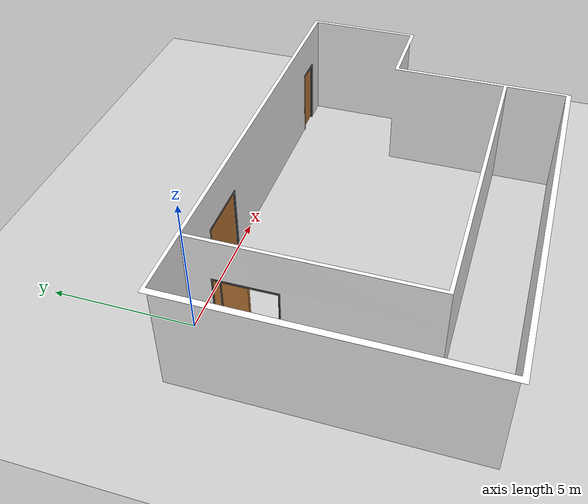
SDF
<?xml version="1.0" ?>
<sdf version="1.6">
  <model name="clf_walls">
    <static>true</static>
    <link name="link">
      <!--   Collision   -->
      <collision name="walls_collision">
        <geometry>
          <mesh>
            <uri>model://clf_walls/meshes/clf_walls.dae</uri>
          </mesh>
        </geometry>
      </collision>
      <collision name="floor_collision">
        <geometry>
          <plane>
            <normal>0 0 1</normal>
            <size>100 100</size>
          </plane>
        </geometry>
        <surface>
          <friction>
            <ode>
              <mu>100</mu>
              <mu2>50</mu2>
            </ode>
          </friction>
        </surface>
      </collision>
      <collision name="doors_metal_collision">
        <geometry>
          <mesh>
            <uri>model://clf_walls/meshes/clf_walls_doors_metal.dae</uri>
          </mesh>
        </geometry>
      </collision>
      <collision name="doors_wood_collision">
        <geometry>
          <mesh>
            <uri>model://clf_walls/meshes/clf_walls_doors_wood.dae</uri>
          </mesh>
        </geometry>
      </collision>
      <!--   Visual   -->
      <visual name="walls_visual">
        <material>
          <ambient>1 1 1 1.0</ambient>
          <diffuse>1 1 1 1.0</diffuse>
          <specular>0 0 0 0</specular>
          <emissive>0.1 0.1 0.1 1</emissive>
        </material>
        <geometry>
          <mesh>
            <uri>model://clf_walls/meshes/clf_walls.dae</uri>
          </mesh>
        </geometry>
      </visual>
      <visual name="floor_visual">
        <material>
          <script>
            <uri>file://materials/scripts/floor.material</uri>
            <name>CLF/Floor</name>
          </script>
        </material>
        <geometry>
          <plane>
            <normal>0 0 1</normal>
            <size>100 100</size>
          </plane>
        </geometry>
      </visual>
      <visual name="doors_metal_visual">
        <material>
          <ambient>0.13 0.13 0.13 1.0</ambient>
          <diffuse>0.13 0.13 0.13 1.0</diffuse>
          <specular>0 0 0 0</specular>
          <emissive>0.1 0.1 0.1 1</emissive>
        </material>
        <geometry>
          <mesh>
            <uri>model://clf_walls/meshes/clf_walls_doors_metal.dae</uri>
          </mesh>
        </geometry>
      </visual>
      <visual name="doors_wood_visual">
        <material>
          <ambient>0.8 0.51 0.23 1.0</ambient>
          <diffuse>0.8 0.51 0.23 1.0</diffuse>
          <specular>0 0 0 0</specular>
          <emissive>0.1 0.1 0.1 1</emissive>
        </material>
        <geometry>
          <mesh>
            <uri>model://clf_walls/meshes/clf_walls_doors_wood.dae</uri>
          </mesh>
        </geometry>
      </visual>
    </link>
  </model>
</sdf>
